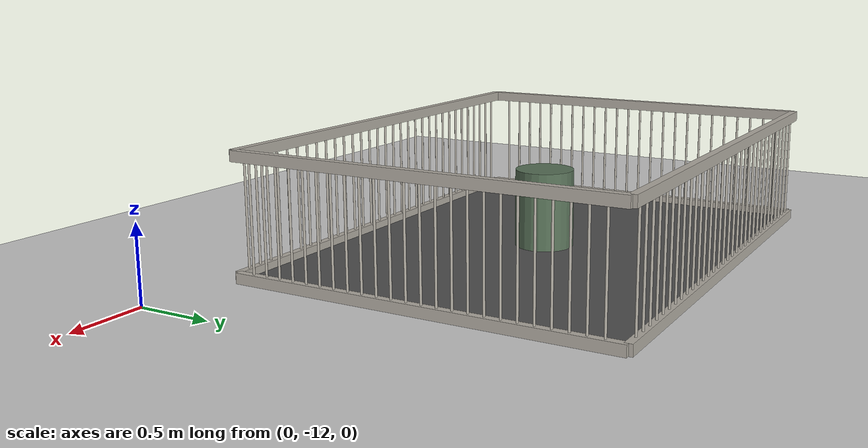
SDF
<sdf version="1.9">
 <world name="pig_pen_16units_world">
  <model name="ground_plane">
   <static>true</static>
   <link name="link">
    <collision name="collision">
     <geometry><plane><normal>0 0 1</normal><size>30 30</size></plane></geometry>
     <surface><friction><ode><mu>1.0</mu><mu2>1.0</mu2></ode></friction></surface>
    </collision>
    <visual name="visual">
     <geometry><plane><normal>0 0 1</normal><size>30 30</size></plane></geometry>
     <material>
      <ambient>0.8 0.8 0.8 1</ambient>
      <diffuse>0.8 0.8 0.8 1</diffuse>
      <specular>0.2 0.2 0.2 1</specular>
     </material>
    </visual>
   </link>
  </model>
  <model name="pen2">
   <pose>-2.275 -10.565 0 0 0 0</pose>
   <static>true</static>
   <link name="floor">
    <pose>0 0 0.01 0 0 0</pose>
    <collision name="collision"><geometry><box><size>3.30 2.55 0.02</size></box></geometry></collision>
    <visual name="visual">
     <geometry><box><size>3.30 2.55 0.02</size></box></geometry>
     <material>
      <ambient>0.25 0.25 0.25 1</ambient>
      <diffuse>0.32 0.32 0.32 1</diffuse>
      <specular>0.05 0.05 0.05 1</specular>
     </material>
    </visual>
   </link>
   <link name="left_wall">
    <pose>0 1.275 0.415 0 0 0</pose>
    <collision name="top_rail_col">
     <pose>0 0 0.38 0 0 0</pose>
     <geometry><box><size>3.30 0.05 0.07</size></box></geometry>
    </collision>
    <visual name="top_rail_vis">
     <pose>0 0 0.38 0 0 0</pose>
     <geometry><box><size>3.30 0.05 0.07</size></box></geometry>
     <material><ambient>0.70 0.68 0.64 1</ambient><diffuse>0.70 0.68 0.64 1</diffuse></material>
    </visual>
    <collision name="bottom_rail_col">
     <pose>0 0 -0.38 0 0 0</pose>
     <geometry><box><size>3.30 0.05 0.07</size></box></geometry>
    </collision>
    <visual name="bottom_rail_vis">
     <pose>0 0 -0.38 0 0 0</pose>
     <geometry><box><size>3.30 0.05 0.07</size></box></geometry>
     <material><ambient>0.70 0.68 0.64 1</ambient><diffuse>0.70 0.68 0.64 1</diffuse></material>
    </visual>
    <collision name="bar_01_col">
     <pose>-1.55 0 0 0 0 0</pose>
     <geometry><cylinder><radius>0.0075</radius><length>0.69</length></cylinder></geometry>
    </collision>
    <visual name="bar_01_vis">
     <pose>-1.55 0 0 0 0 0</pose>
     <geometry><cylinder><radius>0.0075</radius><length>0.69</length></cylinder></geometry>
     <material><ambient>0.70 0.68 0.64 1</ambient><diffuse>0.70 0.68 0.64 1</diffuse></material>
    </visual>
    <collision name="bar_02_col">
     <pose>-1.45 0 0 0 0 0</pose>
     <geometry><cylinder><radius>0.0075</radius><length>0.69</length></cylinder></geometry>
    </collision>
    <visual name="bar_02_vis">
     <pose>-1.45 0 0 0 0 0</pose>
     <geometry><cylinder><radius>0.0075</radius><length>0.69</length></cylinder></geometry>
     <material><ambient>0.70 0.68 0.64 1</ambient><diffuse>0.70 0.68 0.64 1</diffuse></material>
    </visual>
    <collision name="bar_03_col">
     <pose>-1.35 0 0 0 0 0</pose>
     <geometry><cylinder><radius>0.0075</radius><length>0.69</length></cylinder></geometry>
    </collision>
    <visual name="bar_03_vis">
     <pose>-1.35 0 0 0 0 0</pose>
     <geometry><cylinder><radius>0.0075</radius><length>0.69</length></cylinder></geometry>
     <material><ambient>0.70 0.68 0.64 1</ambient><diffuse>0.70 0.68 0.64 1</diffuse></material>
    </visual>
    <collision name="bar_04_col">
     <pose>-1.25 0 0 0 0 0</pose>
     <geometry><cylinder><radius>0.0075</radius><length>0.69</length></cylinder></geometry>
    </collision>
    <visual name="bar_04_vis">
     <pose>-1.25 0 0 0 0 0</pose>
     <geometry><cylinder><radius>0.0075</radius><length>0.69</length></cylinder></geometry>
     <material><ambient>0.70 0.68 0.64 1</ambient><diffuse>0.70 0.68 0.64 1</diffuse></material>
    </visual>
    <collision name="bar_05_col">
     <pose>-1.15 0 0 0 0 0</pose>
     <geometry><cylinder><radius>0.0075</radius><length>0.69</length></cylinder></geometry>
    </collision>
    <visual name="bar_05_vis">
     <pose>-1.15 0 0 0 0 0</pose>
     <geometry><cylinder><radius>0.0075</radius><length>0.69</length></cylinder></geometry>
     <material><ambient>0.70 0.68 0.64 1</ambient><diffuse>0.70 0.68 0.64 1</diffuse></material>
    </visual>
    <collision name="bar_06_col">
     <pose>-1.05 0 0 0 0 0</pose>
     <geometry><cylinder><radius>0.0075</radius><length>0.69</length></cylinder></geometry>
    </collision>
    <visual name="bar_06_vis">
     <pose>-1.05 0 0 0 0 0</pose>
     <geometry><cylinder><radius>0.0075</radius><length>0.69</length></cylinder></geometry>
     <material><ambient>0.70 0.68 0.64 1</ambient><diffuse>0.70 0.68 0.64 1</diffuse></material>
    </visual>
    <collision name="bar_07_col">
     <pose>-0.95 0 0 0 0 0</pose>
     <geometry><cylinder><radius>0.0075</radius><length>0.69</length></cylinder></geometry>
    </collision>
    <visual name="bar_07_vis">
     <pose>-0.95 0 0 0 0 0</pose>
     <geometry><cylinder><radius>0.0075</radius><length>0.69</length></cylinder></geometry>
     <material><ambient>0.70 0.68 0.64 1</ambient><diffuse>0.70 0.68 0.64 1</diffuse></material>
    </visual>
    <collision name="bar_08_col">
     <pose>-0.85 0 0 0 0 0</pose>
     <geometry><cylinder><radius>0.0075</radius><length>0.69</length></cylinder></geometry>
    </collision>
    <visual name="bar_08_vis">
     <pose>-0.85 0 0 0 0 0</pose>
     <geometry><cylinder><radius>0.0075</radius><length>0.69</length></cylinder></geometry>
     <material><ambient>0.70 0.68 0.64 1</ambient><diffuse>0.70 0.68 0.64 1</diffuse></material>
    </visual>
    <collision name="bar_09_col">
     <pose>-0.75 0 0 0 0 0</pose>
     <geometry><cylinder><radius>0.0075</radius><length>0.69</length></cylinder></geometry>
    </collision>
    <visual name="bar_09_vis">
     <pose>-0.75 0 0 0 0 0</pose>
     <geometry><cylinder><radius>0.0075</radius><length>0.69</length></cylinder></geometry>
     <material><ambient>0.70 0.68 0.64 1</ambient><diffuse>0.70 0.68 0.64 1</diffuse></material>
    </visual>
    <collision name="bar_10_col">
     <pose>-0.65 0 0 0 0 0</pose>
     <geometry><cylinder><radius>0.0075</radius><length>0.69</length></cylinder></geometry>
    </collision>
    <visual name="bar_10_vis">
     <pose>-0.65 0 0 0 0 0</pose>
     <geometry><cylinder><radius>0.0075</radius><length>0.69</length></cylinder></geometry>
     <material><ambient>0.70 0.68 0.64 1</ambient><diffuse>0.70 0.68 0.64 1</diffuse></material>
    </visual>
    <collision name="bar_11_col">
     <pose>-0.55 0 0 0 0 0</pose>
     <geometry><cylinder><radius>0.0075</radius><length>0.69</length></cylinder></geometry>
    </collision>
    <visual name="bar_11_vis">
     <pose>-0.55 0 0 0 0 0</pose>
     <geometry><cylinder><radius>0.0075</radius><length>0.69</length></cylinder></geometry>
     <material><ambient>0.70 0.68 0.64 1</ambient><diffuse>0.70 0.68 0.64 1</diffuse></material>
    </visual>
    <collision name="bar_12_col">
     <pose>-0.45 0 0 0 0 0</pose>
     <geometry><cylinder><radius>0.0075</radius><length>0.69</length></cylinder></geometry>
    </collision>
    <visual name="bar_12_vis">
     <pose>-0.45 0 0 0 0 0</pose>
     <geometry><cylinder><radius>0.0075</radius><length>0.69</length></cylinder></geometry>
     <material><ambient>0.70 0.68 0.64 1</ambient><diffuse>0.70 0.68 0.64 1</diffuse></material>
    </visual>
    <collision name="bar_13_col">
     <pose>-0.35 0 0 0 0 0</pose>
     <geometry><cylinder><radius>0.0075</radius><length>0.69</length></cylinder></geometry>
    </collision>
    <visual name="bar_13_vis">
     <pose>-0.35 0 0 0 0 0</pose>
     <geometry><cylinder><radius>0.0075</radius><length>0.69</length></cylinder></geometry>
     <material><ambient>0.70 0.68 0.64 1</ambient><diffuse>0.70 0.68 0.64 1</diffuse></material>
    </visual>
    <collision name="bar_14_col">
     <pose>-0.25 0 0 0 0 0</pose>
     <geometry><cylinder><radius>0.0075</radius><length>0.69</length></cylinder></geometry>
    </collision>
    <visual name="bar_14_vis">
     <pose>-0.25 0 0 0 0 0</pose>
     <geometry><cylinder><radius>0.0075</radius><length>0.69</length></cylinder></geometry>
     <material><ambient>0.70 0.68 0.64 1</ambient><diffuse>0.70 0.68 0.64 1</diffuse></material>
    </visual>
    <collision name="bar_15_col">
     <pose>-0.15 0 0 0 0 0</pose>
     <geometry><cylinder><radius>0.0075</radius><length>0.69</length></cylinder></geometry>
    </collision>
    <visual name="bar_15_vis">
     <pose>-0.15 0 0 0 0 0</pose>
     <geometry><cylinder><radius>0.0075</radius><length>0.69</length></cylinder></geometry>
     <material><ambient>0.70 0.68 0.64 1</ambient><diffuse>0.70 0.68 0.64 1</diffuse></material>
    </visual>
    <collision name="bar_16_col">
     <pose>-0.05 0 0 0 0 0</pose>
     <geometry><cylinder><radius>0.0075</radius><length>0.69</length></cylinder></geometry>
    </collision>
    <visual name="bar_16_vis">
     <pose>-0.05 0 0 0 0 0</pose>
     <geometry><cylinder><radius>0.0075</radius><length>0.69</length></cylinder></geometry>
     <material><ambient>0.70 0.68 0.64 1</ambient><diffuse>0.70 0.68 0.64 1</diffuse></material>
    </visual>
    <collision name="bar_17_col">
     <pose>0.05 0 0 0 0 0</pose>
     <geometry><cylinder><radius>0.0075</radius><length>0.69</length></cylinder></geometry>
    </collision>
    <visual name="bar_17_vis">
     <pose>0.05 0 0 0 0 0</pose>
     <geometry><cylinder><radius>0.0075</radius><length>0.69</length></cylinder></geometry>
     <material><ambient>0.70 0.68 0.64 1</ambient><diffuse>0.70 0.68 0.64 1</diffuse></material>
    </visual>
    <collision name="bar_18_col">
     <pose>0.15 0 0 0 0 0</pose>
     <geometry><cylinder><radius>0.0075</radius><length>0.69</length></cylinder></geometry>
    </collision>
    <visual name="bar_18_vis">
     <pose>0.15 0 0 0 0 0</pose>
     <geometry><cylinder><radius>0.0075</radius><length>0.69</length></cylinder></geometry>
     <material><ambient>0.70 0.68 0.64 1</ambient><diffuse>0.70 0.68 0.64 1</diffuse></material>
    </visual>
    <collision name="bar_19_col">
     <pose>0.25 0 0 0 0 0</pose>
     <geometry><cylinder><radius>0.0075</radius><length>0.69</length></cylinder></geometry>
    </collision>
    <visual name="bar_19_vis">
     <pose>0.25 0 0 0 0 0</pose>
     <geometry><cylinder><radius>0.0075</radius><length>0.69</length></cylinder></geometry>
     <material><ambient>0.70 0.68 0.64 1</ambient><diffuse>0.70 0.68 0.64 1</diffuse></material>
    </visual>
    <collision name="bar_20_col">
     <pose>0.35 0 0 0 0 0</pose>
     <geometry><cylinder><radius>0.0075</radius><length>0.69</length></cylinder></geometry>
    </collision>
    <visual name="bar_20_vis">
     <pose>0.35 0 0 0 0 0</pose>
     <geometry><cylinder><radius>0.0075</radius><length>0.69</length></cylinder></geometry>
     <material><ambient>0.70 0.68 0.64 1</ambient><diffuse>0.70 0.68 0.64 1</diffuse></material>
    </visual>
    <collision name="bar_21_col">
     <pose>0.45 0 0 0 0 0</pose>
     <geometry><cylinder><radius>0.0075</radius><length>0.69</length></cylinder></geometry>
    </collision>
    <visual name="bar_21_vis">
     <pose>0.45 0 0 0 0 0</pose>
     <geometry><cylinder><radius>0.0075</radius><length>0.69</length></cylinder></geometry>
     <material><ambient>0.70 0.68 0.64 1</ambient><diffuse>0.70 0.68 0.64 1</diffuse></material>
    </visual>
    <collision name="bar_22_col">
     <pose>0.55 0 0 0 0 0</pose>
     <geometry><cylinder><radius>0.0075</radius><length>0.69</length></cylinder></geometry>
    </collision>
    <visual name="bar_22_vis">
     <pose>0.55 0 0 0 0 0</pose>
     <geometry><cylinder><radius>0.0075</radius><length>0.69</length></cylinder></geometry>
     <material><ambient>0.70 0.68 0.64 1</ambient><diffuse>0.70 0.68 0.64 1</diffuse></material>
    </visual>
    <collision name="bar_23_col">
     <pose>0.65 0 0 0 0 0</pose>
     <geometry><cylinder><radius>0.0075</radius><length>0.69</length></cylinder></geometry>
    </collision>
    <visual name="bar_23_vis">
     <pose>0.65 0 0 0 0 0</pose>
     <geometry><cylinder><radius>0.0075</radius><length>0.69</length></cylinder></geometry>
     <material><ambient>0.70 0.68 0.64 1</ambient><diffuse>0.70 0.68 0.64 1</diffuse></material>
    </visual>
    <collision name="bar_24_col">
     <pose>0.75 0 0 0 0 0</pose>
     <geometry><cylinder><radius>0.0075</radius><length>0.69</length></cylinder></geometry>
    </collision>
    <visual name="bar_24_vis">
     <pose>0.75 0 0 0 0 0</pose>
     <geometry><cylinder><radius>0.0075</radius><length>0.69</length></cylinder></geometry>
     <material><ambient>0.70 0.68 0.64 1</ambient><diffuse>0.70 0.68 0.64 1</diffuse></material>
    </visual>
    <collision name="bar_25_col">
     <pose>0.85 0 0 0 0 0</pose>
     <geometry><cylinder><radius>0.0075</radius><length>0.69</length></cylinder></geometry>
    </collision>
    <visual name="bar_25_vis">
     <pose>0.85 0 0 0 0 0</pose>
     <geometry><cylinder><radius>0.0075</radius><length>0.69</length></cylinder></geometry>
     <material><ambient>0.70 0.68 0.64 1</ambient><diffuse>0.70 0.68 0.64 1</diffuse></material>
    </visual>
    <collision name="bar_26_col">
     <pose>0.95 0 0 0 0 0</pose>
     <geometry><cylinder><radius>0.0075</radius><length>0.69</length></cylinder></geometry>
    </collision>
    <visual name="bar_26_vis">
     <pose>0.95 0 0 0 0 0</pose>
     <geometry><cylinder><radius>0.0075</radius><length>0.69</length></cylinder></geometry>
     <material><ambient>0.70 0.68 0.64 1</ambient><diffuse>0.70 0.68 0.64 1</diffuse></material>
    </visual>
    <collision name="bar_27_col">
     <pose>1.05 0 0 0 0 0</pose>
     <geometry><cylinder><radius>0.0075</radius><length>0.69</length></cylinder></geometry>
    </collision>
    <visual name="bar_27_vis">
     <pose>1.05 0 0 0 0 0</pose>
     <geometry><cylinder><radius>0.0075</radius><length>0.69</length></cylinder></geometry>
     <material><ambient>0.70 0.68 0.64 1</ambient><diffuse>0.70 0.68 0.64 1</diffuse></material>
    </visual>
    <collision name="bar_28_col">
     <pose>1.15 0 0 0 0 0</pose>
     <geometry><cylinder><radius>0.0075</radius><length>0.69</length></cylinder></geometry>
    </collision>
    <visual name="bar_28_vis">
     <pose>1.15 0 0 0 0 0</pose>
     <geometry><cylinder><radius>0.0075</radius><length>0.69</length></cylinder></geometry>
     <material><ambient>0.70 0.68 0.64 1</ambient><diffuse>0.70 0.68 0.64 1</diffuse></material>
    </visual>
    <collision name="bar_29_col">
     <pose>1.25 0 0 0 0 0</pose>
     <geometry><cylinder><radius>0.0075</radius><length>0.69</length></cylinder></geometry>
    </collision>
    <visual name="bar_29_vis">
     <pose>1.25 0 0 0 0 0</pose>
     <geometry><cylinder><radius>0.0075</radius><length>0.69</length></cylinder></geometry>
     <material><ambient>0.70 0.68 0.64 1</ambient><diffuse>0.70 0.68 0.64 1</diffuse></material>
    </visual>
    <collision name="bar_30_col">
     <pose>1.35 0 0 0 0 0</pose>
     <geometry><cylinder><radius>0.0075</radius><length>0.69</length></cylinder></geometry>
    </collision>
    <visual name="bar_30_vis">
     <pose>1.35 0 0 0 0 0</pose>
     <geometry><cylinder><radius>0.0075</radius><length>0.69</length></cylinder></geometry>
     <material><ambient>0.70 0.68 0.64 1</ambient><diffuse>0.70 0.68 0.64 1</diffuse></material>
    </visual>
    <collision name="bar_31_col">
     <pose>1.45 0 0 0 0 0</pose>
     <geometry><cylinder><radius>0.0075</radius><length>0.69</length></cylinder></geometry>
    </collision>
    <visual name="bar_31_vis">
     <pose>1.45 0 0 0 0 0</pose>
     <geometry><cylinder><radius>0.0075</radius><length>0.69</length></cylinder></geometry>
     <material><ambient>0.70 0.68 0.64 1</ambient><diffuse>0.70 0.68 0.64 1</diffuse></material>
    </visual>
    <collision name="bar_32_col">
     <pose>1.55 0 0 0 0 0</pose>
     <geometry><cylinder><radius>0.0075</radius><length>0.69</length></cylinder></geometry>
    </collision>
    <visual name="bar_32_vis">
     <pose>1.55 0 0 0 0 0</pose>
     <geometry><cylinder><radius>0.0075</radius><length>0.69</length></cylinder></geometry>
     <material><ambient>0.70 0.68 0.64 1</ambient><diffuse>0.70 0.68 0.64 1</diffuse></material>
    </visual>
   </link>
   <link name="right_wall">
    <pose>0 -1.275 0.415 0 0 0</pose>
    <collision name="top_rail_col">
     <pose>0 0 0.38 0 0 0</pose>
     <geometry><box><size>3.30 0.05 0.07</size></box></geometry>
    </collision>
    <visual name="top_rail_vis">
     <pose>0 0 0.38 0 0 0</pose>
     <geometry><box><size>3.30 0.05 0.07</size></box></geometry>
     <material><ambient>0.70 0.68 0.64 1</ambient><diffuse>0.70 0.68 0.64 1</diffuse></material>
    </visual>
    <collision name="bottom_rail_col">
     <pose>0 0 -0.38 0 0 0</pose>
     <geometry><box><size>3.30 0.05 0.07</size></box></geometry>
    </collision>
    <visual name="bottom_rail_vis">
     <pose>0 0 -0.38 0 0 0</pose>
     <geometry><box><size>3.30 0.05 0.07</size></box></geometry>
     <material><ambient>0.70 0.68 0.64 1</ambient><diffuse>0.70 0.68 0.64 1</diffuse></material>
    </visual>
    <collision name="bar_01_col">
     <pose>-1.55 0 0 0 0 0</pose>
     <geometry><cylinder><radius>0.0075</radius><length>0.69</length></cylinder></geometry>
    </collision>
    <visual name="bar_01_vis">
     <pose>-1.55 0 0 0 0 0</pose>
     <geometry><cylinder><radius>0.0075</radius><length>0.69</length></cylinder></geometry>
     <material><ambient>0.70 0.68 0.64 1</ambient><diffuse>0.70 0.68 0.64 1</diffuse></material>
    </visual>
    <collision name="bar_02_col">
     <pose>-1.45 0 0 0 0 0</pose>
     <geometry><cylinder><radius>0.0075</radius><length>0.69</length></cylinder></geometry>
    </collision>
    <visual name="bar_02_vis">
     <pose>-1.45 0 0 0 0 0</pose>
     <geometry><cylinder><radius>0.0075</radius><length>0.69</length></cylinder></geometry>
     <material><ambient>0.70 0.68 0.64 1</ambient><diffuse>0.70 0.68 0.64 1</diffuse></material>
    </visual>
    <collision name="bar_03_col">
     <pose>-1.35 0 0 0 0 0</pose>
     <geometry><cylinder><radius>0.0075</radius><length>0.69</length></cylinder></geometry>
    </collision>
    <visual name="bar_03_vis">
     <pose>-1.35 0 0 0 0 0</pose>
     <geometry><cylinder><radius>0.0075</radius><length>0.69</length></cylinder></geometry>
     <material><ambient>0.70 0.68 0.64 1</ambient><diffuse>0.70 0.68 0.64 1</diffuse></material>
    </visual>
    <collision name="bar_04_col">
     <pose>-1.25 0 0 0 0 0</pose>
     <geometry><cylinder><radius>0.0075</radius><length>0.69</length></cylinder></geometry>
    </collision>
    <visual name="bar_04_vis">
     <pose>-1.25 0 0 0 0 0</pose>
     <geometry><cylinder><radius>0.0075</radius><length>0.69</length></cylinder></geometry>
     <material><ambient>0.70 0.68 0.64 1</ambient><diffuse>0.70 0.68 0.64 1</diffuse></material>
    </visual>
    <collision name="bar_05_col">
     <pose>-1.15 0 0 0 0 0</pose>
     <geometry><cylinder><radius>0.0075</radius><length>0.69</length></cylinder></geometry>
    </collision>
    <visual name="bar_05_vis">
     <pose>-1.15 0 0 0 0 0</pose>
     <geometry><cylinder><radius>0.0075</radius><length>0.69</length></cylinder></geometry>
     <material><ambient>0.70 0.68 0.64 1</ambient><diffuse>0.70 0.68 0.64 1</diffuse></material>
    </visual>
    <collision name="bar_06_col">
     <pose>-1.05 0 0 0 0 0</pose>
     <geometry><cylinder><radius>0.0075</radius><length>0.69</length></cylinder></geometry>
    </collision>
    <visual name="bar_06_vis">
     <pose>-1.05 0 0 0 0 0</pose>
     <geometry><cylinder><radius>0.0075</radius><length>0.69</length></cylinder></geometry>
     <material><ambient>0.70 0.68 0.64 1</ambient><diffuse>0.70 0.68 0.64 1</diffuse></material>
    </visual>
    <collision name="bar_07_col">
     <pose>-0.95 0 0 0 0 0</pose>
     <geometry><cylinder><radius>0.0075</radius><length>0.69</length></cylinder></geometry>
    </collision>
    <visual name="bar_07_vis">
     <pose>-0.95 0 0 0 0 0</pose>
     <geometry><cylinder><radius>0.0075</radius><length>0.69</length></cylinder></geometry>
     <material><ambient>0.70 0.68 0.64 1</ambient><diffuse>0.70 0.68 0.64 1</diffuse></material>
    </visual>
    <collision name="bar_08_col">
     <pose>-0.85 0 0 0 0 0</pose>
     <geometry><cylinder><radius>0.0075</radius><length>0.69</length></cylinder></geometry>
    </collision>
    <visual name="bar_08_vis">
     <pose>-0.85 0 0 0 0 0</pose>
     <geometry><cylinder><radius>0.0075</radius><length>0.69</length></cylinder></geometry>
     <material><ambient>0.70 0.68 0.64 1</ambient><diffuse>0.70 0.68 0.64 1</diffuse></material>
    </visual>
    <collision name="bar_09_col">
     <pose>-0.75 0 0 0 0 0</pose>
     <geometry><cylinder><radius>0.0075</radius><length>0.69</length></cylinder></geometry>
    </collision>
    <visual name="bar_09_vis">
     <pose>-0.75 0 0 0 0 0</pose>
     <geometry><cylinder><radius>0.0075</radius><length>0.69</length></cylinder></geometry>
     <material><ambient>0.70 0.68 0.64 1</ambient><diffuse>0.70 0.68 0.64 1</diffuse></material>
    </visual>
    <collision name="bar_10_col">
     <pose>-0.65 0 0 0 0 0</pose>
     <geometry><cylinder><radius>0.0075</radius><length>0.69</length></cylinder></geometry>
    </collision>
    <visual name="bar_10_vis">
     <pose>-0.65 0 0 0 0 0</pose>
     <geometry><cylinder><radius>0.0075</radius><length>0.69</length></cylinder></geometry>
     <material><ambient>0.70 0.68 0.64 1</ambient><diffuse>0.70 0.68 0.64 1</diffuse></material>
    </visual>
    <collision name="bar_11_col">
     <pose>-0.55 0 0 0 0 0</pose>
     <geometry><cylinder><radius>0.0075</radius><length>0.69</length></cylinder></geometry>
    </collision>
    <visual name="bar_11_vis">
     <pose>-0.55 0 0 0 0 0</pose>
     <geometry><cylinder><radius>0.0075</radius><length>0.69</length></cylinder></geometry>
     <material><ambient>0.70 0.68 0.64 1</ambient><diffuse>0.70 0.68 0.64 1</diffuse></material>
    </visual>
    <collision name="bar_12_col">
     <pose>-0.45 0 0 0 0 0</pose>
     <geometry><cylinder><radius>0.0075</radius><length>0.69</length></cylinder></geometry>
    </collision>
    <visual name="bar_12_vis">
     <pose>-0.45 0 0 0 0 0</pose>
     <geometry><cylinder><radius>0.0075</radius><length>0.69</length></cylinder></geometry>
     <material><ambient>0.70 0.68 0.64 1</ambient><diffuse>0.70 0.68 0.64 1</diffuse></material>
    </visual>
    <collision name="bar_13_col">
     <pose>-0.35 0 0 0 0 0</pose>
     <geometry><cylinder><radius>0.0075</radius><length>0.69</length></cylinder></geometry>
    </collision>
    <visual name="bar_13_vis">
     <pose>-0.35 0 0 0 0 0</pose>
     <geometry><cylinder><radius>0.0075</radius><length>0.69</length></cylinder></geometry>
     <material><ambient>0.70 0.68 0.64 1</ambient><diffuse>0.70 0.68 0.64 1</diffuse></material>
    </visual>
    <collision name="bar_14_col">
     <pose>-0.25 0 0 0 0 0</pose>
     <geometry><cylinder><radius>0.0075</radius><length>0.69</length></cylinder></geometry>
    </collision>
    <visual name="bar_14_vis">
     <pose>-0.25 0 0 0 0 0</pose>
     <geometry><cylinder><radius>0.0075</radius><length>0.69</length></cylinder></geometry>
     <material><ambient>0.70 0.68 0.64 1</ambient><diffuse>0.70 0.68 0.64 1</diffuse></material>
    </visual>
    <collision name="bar_15_col">
     <pose>-0.15 0 0 0 0 0</pose>
     <geometry><cylinder><radius>0.0075</radius><length>0.69</length></cylinder></geometry>
    </collision>
    <visual name="bar_15_vis">
     <pose>-0.15 0 0 0 0 0</pose>
     <geometry><cylinder><radius>0.0075</radius><length>0.69</length></cylinder></geometry>
     <material><ambient>0.70 0.68 0.64 1</ambient><diffuse>0.70 0.68 0.64 1</diffuse></material>
    </visual>
    <collision name="bar_16_col">
     <pose>-0.05 0 0 0 0 0</pose>
     <geometry><cylinder><radius>0.0075</radius><length>0.69</length></cylinder></geometry>
    </collision>
    <visual name="bar_16_vis">
     <pose>-0.05 0 0 0 0 0</pose>
     <geometry><cylinder><radius>0.0075</radius><length>0.69</length></cylinder></geometry>
     <material><ambient>0.70 0.68 0.64 1</ambient><diffuse>0.70 0.68 0.64 1</diffuse></material>
    </visual>
    <collision name="bar_17_col">
     <pose>0.05 0 0 0 0 0</pose>
     <geometry><cylinder><radius>0.0075</radius><length>0.69</length></cylinder></geometry>
    </collision>
    <visual name="bar_17_vis">
     <pose>0.05 0 0 0 0 0</pose>
     <geometry><cylinder><radius>0.0075</radius><length>0.69</length></cylinder></geometry>
     <material><ambient>0.70 0.68 0.64 1</ambient><diffuse>0.70 0.68 0.64 1</diffuse></material>
    </visual>
    <collision name="bar_18_col">
     <pose>0.15 0 0 0 0 0</pose>
     <geometry><cylinder><radius>0.0075</radius><length>0.69</length></cylinder></geometry>
    </collision>
    <visual name="bar_18_vis">
     <pose>0.15 0 0 0 0 0</pose>
     <geometry><cylinder><radius>0.0075</radius><length>0.69</length></cylinder></geometry>
     <material><ambient>0.70 0.68 0.64 1</ambient><diffuse>0.70 0.68 0.64 1</diffuse></material>
    </visual>
    <collision name="bar_19_col">
     <pose>0.25 0 0 0 0 0</pose>
     <geometry><cylinder><radius>0.0075</radius><length>0.69</length></cylinder></geometry>
    </collision>
    <visual name="bar_19_vis">
     <pose>0.25 0 0 0 0 0</pose>
     <geometry><cylinder><radius>0.0075</radius><length>0.69</length></cylinder></geometry>
     <material><ambient>0.70 0.68 0.64 1</ambient><diffuse>0.70 0.68 0.64 1</diffuse></material>
    </visual>
    <collision name="bar_20_col">
     <pose>0.35 0 0 0 0 0</pose>
     <geometry><cylinder><radius>0.0075</radius><length>0.69</length></cylinder></geometry>
    </collision>
    <visual name="bar_20_vis">
     <pose>0.35 0 0 0 0 0</pose>
     <geometry><cylinder><radius>0.0075</radius><length>0.69</length></cylinder></geometry>
     <material><ambient>0.70 0.68 0.64 1</ambient><diffuse>0.70 0.68 0.64 1</diffuse></material>
    </visual>
    <collision name="bar_21_col">
     <pose>0.45 0 0 0 0 0</pose>
     <geometry><cylinder><radius>0.0075</radius><length>0.69</length></cylinder></geometry>
    </collision>
    <visual name="bar_21_vis">
     <pose>0.45 0 0 0 0 0</pose>
     <geometry><cylinder><radius>0.0075</radius><length>0.69</length></cylinder></geometry>
     <material><ambient>0.70 0.68 0.64 1</ambient><diffuse>0.70 0.68 0.64 1</diffuse></material>
    </visual>
    <collision name="bar_22_col">
     <pose>0.55 0 0 0 0 0</pose>
     <geometry><cylinder><radius>0.0075</radius><length>0.69</length></cylinder></geometry>
    </collision>
    <visual name="bar_22_vis">
     <pose>0.55 0 0 0 0 0</pose>
     <geometry><cylinder><radius>0.0075</radius><length>0.69</length></cylinder></geometry>
     <material><ambient>0.70 0.68 0.64 1</ambient><diffuse>0.70 0.68 0.64 1</diffuse></material>
    </visual>
    <collision name="bar_23_col">
     <pose>0.65 0 0 0 0 0</pose>
     <geometry><cylinder><radius>0.0075</radius><length>0.69</length></cylinder></geometry>
    </collision>
    <visual name="bar_23_vis">
     <pose>0.65 0 0 0 0 0</pose>
     <geometry><cylinder><radius>0.0075</radius><length>0.69</length></cylinder></geometry>
     <material><ambient>0.70 0.68 0.64 1</ambient><diffuse>0.70 0.68 0.64 1</diffuse></material>
    </visual>
    <collision name="bar_24_col">
     <pose>0.75 0 0 0 0 0</pose>
     <geometry><cylinder><radius>0.0075</radius><length>0.69</length></cylinder></geometry>
    </collision>
    <visual name="bar_24_vis">
     <pose>0.75 0 0 0 0 0</pose>
     <geometry><cylinder><radius>0.0075</radius><length>0.69</length></cylinder></geometry>
     <material><ambient>0.70 0.68 0.64 1</ambient><diffuse>0.70 0.68 0.64 1</diffuse></material>
    </visual>
    <collision name="bar_25_col">
     <pose>0.85 0 0 0 0 0</pose>
     <geometry><cylinder><radius>0.0075</radius><length>0.69</length></cylinder></geometry>
    </collision>
    <visual name="bar_25_vis">
     <pose>0.85 0 0 0 0 0</pose>
     <geometry><cylinder><radius>0.0075</radius><length>0.69</length></cylinder></geometry>
     <material><ambient>0.70 0.68 0.64 1</ambient><diffuse>0.70 0.68 0.64 1</diffuse></material>
    </visual>
    <collision name="bar_26_col">
     <pose>0.95 0 0 0 0 0</pose>
     <geometry><cylinder><radius>0.0075</radius><length>0.69</length></cylinder></geometry>
    </collision>
    <visual name="bar_26_vis">
     <pose>0.95 0 0 0 0 0</pose>
     <geometry><cylinder><radius>0.0075</radius><length>0.69</length></cylinder></geometry>
     <material><ambient>0.70 0.68 0.64 1</ambient><diffuse>0.70 0.68 0.64 1</diffuse></material>
    </visual>
    <collision name="bar_27_col">
     <pose>1.05 0 0 0 0 0</pose>
     <geometry><cylinder><radius>0.0075</radius><length>0.69</length></cylinder></geometry>
    </collision>
    <visual name="bar_27_vis">
     <pose>1.05 0 0 0 0 0</pose>
     <geometry><cylinder><radius>0.0075</radius><length>0.69</length></cylinder></geometry>
     <material><ambient>0.70 0.68 0.64 1</ambient><diffuse>0.70 0.68 0.64 1</diffuse></material>
    </visual>
    <collision name="bar_28_col">
     <pose>1.15 0 0 0 0 0</pose>
     <geometry><cylinder><radius>0.0075</radius><length>0.69</length></cylinder></geometry>
    </collision>
    <visual name="bar_28_vis">
     <pose>1.15 0 0 0 0 0</pose>
     <geometry><cylinder><radius>0.0075</radius><length>0.69</length></cylinder></geometry>
     <material><ambient>0.70 0.68 0.64 1</ambient><diffuse>0.70 0.68 0.64 1</diffuse></material>
    </visual>
    <collision name="bar_29_col">
     <pose>1.25 0 0 0 0 0</pose>
     <geometry><cylinder><radius>0.0075</radius><length>0.69</length></cylinder></geometry>
    </collision>
    <visual name="bar_29_vis">
     <pose>1.25 0 0 0 0 0</pose>
     <geometry><cylinder><radius>0.0075</radius><length>0.69</length></cylinder></geometry>
     <material><ambient>0.70 0.68 0.64 1</ambient><diffuse>0.70 0.68 0.64 1</diffuse></material>
    </visual>
    <collision name="bar_30_col">
     <pose>1.35 0 0 0 0 0</pose>
     <geometry><cylinder><radius>0.0075</radius><length>0.69</length></cylinder></geometry>
    </collision>
    <visual name="bar_30_vis">
     <pose>1.35 0 0 0 0 0</pose>
     <geometry><cylinder><radius>0.0075</radius><length>0.69</length></cylinder></geometry>
     <material><ambient>0.70 0.68 0.64 1</ambient><diffuse>0.70 0.68 0.64 1</diffuse></material>
    </visual>
    <collision name="bar_31_col">
     <pose>1.45 0 0 0 0 0</pose>
     <geometry><cylinder><radius>0.0075</radius><length>0.69</length></cylinder></geometry>
    </collision>
    <visual name="bar_31_vis">
     <pose>1.45 0 0 0 0 0</pose>
     <geometry><cylinder><radius>0.0075</radius><length>0.69</length></cylinder></geometry>
     <material><ambient>0.70 0.68 0.64 1</ambient><diffuse>0.70 0.68 0.64 1</diffuse></material>
    </visual>
    <collision name="bar_32_col">
     <pose>1.55 0 0 0 0 0</pose>
     <geometry><cylinder><radius>0.0075</radius><length>0.69</length></cylinder></geometry>
    </collision>
    <visual name="bar_32_vis">
     <pose>1.55 0 0 0 0 0</pose>
     <geometry><cylinder><radius>0.0075</radius><length>0.69</length></cylinder></geometry>
     <material><ambient>0.70 0.68 0.64 1</ambient><diffuse>0.70 0.68 0.64 1</diffuse></material>
    </visual>
   </link>
   <link name="back_wall">
    <pose>1.65 0 0.415 0 0 0</pose>
    <collision name="top_rail_col">
     <pose>0 0 0.38 0 0 0</pose>
     <geometry><box><size>0.05 2.55 0.07</size></box></geometry>
    </collision>
    <visual name="top_rail_vis">
     <pose>0 0 0.38 0 0 0</pose>
     <geometry><box><size>0.05 2.55 0.07</size></box></geometry>
     <material><ambient>0.70 0.68 0.64 1</ambient><diffuse>0.70 0.68 0.64 1</diffuse></material>
    </visual>
    <collision name="bottom_rail_col">
     <pose>0 0 -0.38 0 0 0</pose>
     <geometry><box><size>0.05 2.55 0.07</size></box></geometry>
    </collision>
    <visual name="bottom_rail_vis">
     <pose>0 0 -0.38 0 0 0</pose>
     <geometry><box><size>0.05 2.55 0.07</size></box></geometry>
     <material><ambient>0.70 0.68 0.64 1</ambient><diffuse>0.70 0.68 0.64 1</diffuse></material>
    </visual>
    <collision name="bar_01_col">
     <pose>0 -1.15 0 0 0 0</pose>
     <geometry><cylinder><radius>0.0075</radius><length>0.69</length></cylinder></geometry>
    </collision>
    <visual name="bar_01_vis">
     <pose>0 -1.15 0 0 0 0</pose>
     <geometry><cylinder><radius>0.0075</radius><length>0.69</length></cylinder></geometry>
     <material><ambient>0.70 0.68 0.64 1</ambient><diffuse>0.70 0.68 0.64 1</diffuse></material>
    </visual>
    <collision name="bar_02_col">
     <pose>0 -1.05 0 0 0 0</pose>
     <geometry><cylinder><radius>0.0075</radius><length>0.69</length></cylinder></geometry>
    </collision>
    <visual name="bar_02_vis">
     <pose>0 -1.05 0 0 0 0</pose>
     <geometry><cylinder><radius>0.0075</radius><length>0.69</length></cylinder></geometry>
     <material><ambient>0.70 0.68 0.64 1</ambient><diffuse>0.70 0.68 0.64 1</diffuse></material>
    </visual>
    <collision name="bar_03_col">
     <pose>0 -0.95 0 0 0 0</pose>
     <geometry><cylinder><radius>0.0075</radius><length>0.69</length></cylinder></geometry>
    </collision>
    <visual name="bar_03_vis">
     <pose>0 -0.95 0 0 0 0</pose>
     <geometry><cylinder><radius>0.0075</radius><length>0.69</length></cylinder></geometry>
     <material><ambient>0.70 0.68 0.64 1</ambient><diffuse>0.70 0.68 0.64 1</diffuse></material>
    </visual>
    <collision name="bar_04_col">
     <pose>0 -0.85 0 0 0 0</pose>
     <geometry><cylinder><radius>0.0075</radius><length>0.69</length></cylinder></geometry>
    </collision>
    <visual name="bar_04_vis">
     <pose>0 -0.85 0 0 0 0</pose>
     <geometry><cylinder><radius>0.0075</radius><length>0.69</length></cylinder></geometry>
     <material><ambient>0.70 0.68 0.64 1</ambient><diffuse>0.70 0.68 0.64 1</diffuse></material>
    </visual>
    <collision name="bar_05_col">
     <pose>0 -0.75 0 0 0 0</pose>
     <geometry><cylinder><radius>0.0075</radius><length>0.69</length></cylinder></geometry>
    </collision>
    <visual name="bar_05_vis">
     <pose>0 -0.75 0 0 0 0</pose>
     <geometry><cylinder><radius>0.0075</radius><length>0.69</length></cylinder></geometry>
     <material><ambient>0.70 0.68 0.64 1</ambient><diffuse>0.70 0.68 0.64 1</diffuse></material>
    </visual>
    <collision name="bar_06_col">
     <pose>0 -0.65 0 0 0 0</pose>
     <geometry><cylinder><radius>0.0075</radius><length>0.69</length></cylinder></geometry>
    </collision>
    <visual name="bar_06_vis">
     <pose>0 -0.65 0 0 0 0</pose>
     <geometry><cylinder><radius>0.0075</radius><length>0.69</length></cylinder></geometry>
     <material><ambient>0.70 0.68 0.64 1</ambient><diffuse>0.70 0.68 0.64 1</diffuse></material>
    </visual>
    <collision name="bar_07_col">
     <pose>0 -0.55 0 0 0 0</pose>
     <geometry><cylinder><radius>0.0075</radius><length>0.69</length></cylinder></geometry>
    </collision>
    <visual name="bar_07_vis">
     <pose>0 -0.55 0 0 0 0</pose>
     <geometry><cylinder><radius>0.0075</radius><length>0.69</length></cylinder></geometry>
     <material><ambient>0.70 0.68 0.64 1</ambient><diffuse>0.70 0.68 0.64 1</diffuse></material>
    </visual>
    <collision name="bar_08_col">
     <pose>0 -0.45 0 0 0 0</pose>
     <geometry><cylinder><radius>0.0075</radius><length>0.69</length></cylinder></geometry>
    </collision>
    <visual name="bar_08_vis">
     <pose>0 -0.45 0 0 0 0</pose>
     <geometry><cylinder><radius>0.0075</radius><length>0.69</length></cylinder></geometry>
     <material><ambient>0.70 0.68 0.64 1</ambient><diffuse>0.70 0.68 0.64 1</diffuse></material>
    </visual>
    <collision name="bar_09_col">
     <pose>0 -0.35 0 0 0 0</pose>
     <geometry><cylinder><radius>0.0075</radius><length>0.69</length></cylinder></geometry>
    </collision>
    <visual name="bar_09_vis">
     <pose>0 -0.35 0 0 0 0</pose>
     <geometry><cylinder><radius>0.0075</radius><length>0.69</length></cylinder></geometry>
     <material><ambient>0.70 0.68 0.64 1</ambient><diffuse>0.70 0.68 0.64 1</diffuse></material>
    </visual>
    <collision name="bar_10_col">
     <pose>0 -0.25 0 0 0 0</pose>
     <geometry><cylinder><radius>0.0075</radius><length>0.69</length></cylinder></geometry>
    </collision>
    <visual name="bar_10_vis">
     <pose>0 -0.25 0 0 0 0</pose>
     <geometry><cylinder><radius>0.0075</radius><length>0.69</length></cylinder></geometry>
     <material><ambient>0.70 0.68 0.64 1</ambient><diffuse>0.70 0.68 0.64 1</diffuse></material>
    </visual>
    <collision name="bar_11_col">
     <pose>0 -0.15 0 0 0 0</pose>
     <geometry><cylinder><radius>0.0075</radius><length>0.69</length></cylinder></geometry>
    </collision>
    <visual name="bar_11_vis">
     <pose>0 -0.15 0 0 0 0</pose>
     <geometry><cylinder><radius>0.0075</radius><length>0.69</length></cylinder></geometry>
     <material><ambient>0.70 0.68 0.64 1</ambient><diffuse>0.70 0.68 0.64 1</diffuse></material>
    </visual>
    <collision name="bar_12_col">
     <pose>0 -0.05 0 0 0 0</pose>
     <geometry><cylinder><radius>0.0075</radius><length>0.69</length></cylinder></geometry>
    </collision>
    <visual name="bar_12_vis">
     <pose>0 -0.05 0 0 0 0</pose>
     <geometry><cylinder><radius>0.0075</radius><length>0.69</length></cylinder></geometry>
     <material><ambient>0.70 0.68 0.64 1</ambient><diffuse>0.70 0.68 0.64 1</diffuse></material>
    </visual>
    <collision name="bar_13_col">
     <pose>0 0.05 0 0 0 0</pose>
     <geometry><cylinder><radius>0.0075</radius><length>0.69</length></cylinder></geometry>
    </collision>
    <visual name="bar_13_vis">
     <pose>0 0.05 0 0 0 0</pose>
     <geometry><cylinder><radius>0.0075</radius><length>0.69</length></cylinder></geometry>
     <material><ambient>0.70 0.68 0.64 1</ambient><diffuse>0.70 0.68 0.64 1</diffuse></material>
    </visual>
    <collision name="bar_14_col">
     <pose>0 0.15 0 0 0 0</pose>
     <geometry><cylinder><radius>0.0075</radius><length>0.69</length></cylinder></geometry>
    </collision>
    <visual name="bar_14_vis">
     <pose>0 0.15 0 0 0 0</pose>
     <geometry><cylinder><radius>0.0075</radius><length>0.69</length></cylinder></geometry>
     <material><ambient>0.70 0.68 0.64 1</ambient><diffuse>0.70 0.68 0.64 1</diffuse></material>
    </visual>
    <collision name="bar_15_col">
     <pose>0 0.25 0 0 0 0</pose>
     <geometry><cylinder><radius>0.0075</radius><length>0.69</length></cylinder></geometry>
    </collision>
    <visual name="bar_15_vis">
     <pose>0 0.25 0 0 0 0</pose>
     <geometry><cylinder><radius>0.0075</radius><length>0.69</length></cylinder></geometry>
     <material><ambient>0.70 0.68 0.64 1</ambient><diffuse>0.70 0.68 0.64 1</diffuse></material>
    </visual>
    <collision name="bar_16_col">
     <pose>0 0.35 0 0 0 0</pose>
     <geometry><cylinder><radius>0.0075</radius><length>0.69</length></cylinder></geometry>
    </collision>
    <visual name="bar_16_vis">
     <pose>0 0.35 0 0 0 0</pose>
     <geometry><cylinder><radius>0.0075</radius><length>0.69</length></cylinder></geometry>
     <material><ambient>0.70 0.68 0.64 1</ambient><diffuse>0.70 0.68 0.64 1</diffuse></material>
    </visual>
    <collision name="bar_17_col">
     <pose>0 0.45 0 0 0 0</pose>
     <geometry><cylinder><radius>0.0075</radius><length>0.69</length></cylinder></geometry>
    </collision>
    <visual name="bar_17_vis">
     <pose>0 0.45 0 0 0 0</pose>
     <geometry><cylinder><radius>0.0075</radius><length>0.69</length></cylinder></geometry>
     <material><ambient>0.70 0.68 0.64 1</ambient><diffuse>0.70 0.68 0.64 1</diffuse></material>
    </visual>
    <collision name="bar_18_col">
     <pose>0 0.55 0 0 0 0</pose>
     <geometry><cylinder><radius>0.0075</radius><length>0.69</length></cylinder></geometry>
    </collision>
    <visual name="bar_18_vis">
     <pose>0 0.55 0 0 0 0</pose>
     <geometry><cylinder><radius>0.0075</radius><length>0.69</length></cylinder></geometry>
     <material><ambient>0.70 0.68 0.64 1</ambient><diffuse>0.70 0.68 0.64 1</diffuse></material>
    </visual>
    <collision name="bar_19_col">
     <pose>0 0.65 0 0 0 0</pose>
     <geometry><cylinder><radius>0.0075</radius><length>0.69</length></cylinder></geometry>
    </collision>
    <visual name="bar_19_vis">
     <pose>0 0.65 0 0 0 0</pose>
     <geometry><cylinder><radius>0.0075</radius><length>0.69</length></cylinder></geometry>
     <material><ambient>0.70 0.68 0.64 1</ambient><diffuse>0.70 0.68 0.64 1</diffuse></material>
    </visual>
    <collision name="bar_20_col">
     <pose>0 0.75 0 0 0 0</pose>
     <geometry><cylinder><radius>0.0075</radius><length>0.69</length></cylinder></geometry>
    </collision>
    <visual name="bar_20_vis">
     <pose>0 0.75 0 0 0 0</pose>
     <geometry><cylinder><radius>0.0075</radius><length>0.69</length></cylinder></geometry>
     <material><ambient>0.70 0.68 0.64 1</ambient><diffuse>0.70 0.68 0.64 1</diffuse></material>
    </visual>
    <collision name="bar_21_col">
     <pose>0 0.85 0 0 0 0</pose>
     <geometry><cylinder><radius>0.0075</radius><length>0.69</length></cylinder></geometry>
    </collision>
    <visual name="bar_21_vis">
     <pose>0 0.85 0 0 0 0</pose>
     <geometry><cylinder><radius>0.0075</radius><length>0.69</length></cylinder></geometry>
     <material><ambient>0.70 0.68 0.64 1</ambient><diffuse>0.70 0.68 0.64 1</diffuse></material>
    </visual>
    <collision name="bar_22_col">
     <pose>0 0.95 0 0 0 0</pose>
     <geometry><cylinder><radius>0.0075</radius><length>0.69</length></cylinder></geometry>
    </collision>
    <visual name="bar_22_vis">
     <pose>0 0.95 0 0 0 0</pose>
     <geometry><cylinder><radius>0.0075</radius><length>0.69</length></cylinder></geometry>
     <material><ambient>0.70 0.68 0.64 1</ambient><diffuse>0.70 0.68 0.64 1</diffuse></material>
    </visual>
    <collision name="bar_23_col">
     <pose>0 1.05 0 0 0 0</pose>
     <geometry><cylinder><radius>0.0075</radius><length>0.69</length></cylinder></geometry>
    </collision>
    <visual name="bar_23_vis">
     <pose>0 1.05 0 0 0 0</pose>
     <geometry><cylinder><radius>0.0075</radius><length>0.69</length></cylinder></geometry>
     <material><ambient>0.70 0.68 0.64 1</ambient><diffuse>0.70 0.68 0.64 1</diffuse></material>
    </visual>
    <collision name="bar_24_col">
     <pose>0 1.15 0 0 0 0</pose>
     <geometry><cylinder><radius>0.0075</radius><length>0.69</length></cylinder></geometry>
    </collision>
    <visual name="bar_24_vis">
     <pose>0 1.15 0 0 0 0</pose>
     <geometry><cylinder><radius>0.0075</radius><length>0.69</length></cylinder></geometry>
     <material><ambient>0.70 0.68 0.64 1</ambient><diffuse>0.70 0.68 0.64 1</diffuse></material>
    </visual>
   </link>
   <link name="front_wall">
    <pose>-1.65 0 0.415 0 0 0</pose>
    <collision name="top_rail_col">
     <pose>0 0 0.38 0 0 0</pose>
     <geometry><box><size>0.05 2.55 0.07</size></box></geometry>
    </collision>
    <visual name="top_rail_vis">
     <pose>0 0 0.38 0 0 0</pose>
     <geometry><box><size>0.05 2.55 0.07</size></box></geometry>
     <material><ambient>0.70 0.68 0.64 1</ambient><diffuse>0.70 0.68 0.64 1</diffuse></material>
    </visual>
    <collision name="bottom_rail_col">
     <pose>0 0 -0.38 0 0 0</pose>
     <geometry><box><size>0.05 2.55 0.07</size></box></geometry>
    </collision>
    <visual name="bottom_rail_vis">
     <pose>0 0 -0.38 0 0 0</pose>
     <geometry><box><size>0.05 2.55 0.07</size></box></geometry>
     <material><ambient>0.70 0.68 0.64 1</ambient><diffuse>0.70 0.68 0.64 1</diffuse></material>
    </visual>
    <collision name="bar_01_col">
     <pose>0 -1.15 0 0 0 0</pose>
     <geometry><cylinder><radius>0.0075</radius><length>0.69</length></cylinder></geometry>
    </collision>
    <visual name="bar_01_vis">
     <pose>0 -1.15 0 0 0 0</pose>
     <geometry><cylinder><radius>0.0075</radius><length>0.69</length></cylinder></geometry>
     <material><ambient>0.70 0.68 0.64 1</ambient><diffuse>0.70 0.68 0.64 1</diffuse></material>
    </visual>
    <collision name="bar_02_col">
     <pose>0 -1.05 0 0 0 0</pose>
     <geometry><cylinder><radius>0.0075</radius><length>0.69</length></cylinder></geometry>
    </collision>
    <visual name="bar_02_vis">
     <pose>0 -1.05 0 0 0 0</pose>
     <geometry><cylinder><radius>0.0075</radius><length>0.69</length></cylinder></geometry>
     <material><ambient>0.70 0.68 0.64 1</ambient><diffuse>0.70 0.68 0.64 1</diffuse></material>
    </visual>
    <collision name="bar_03_col">
     <pose>0 -0.95 0 0 0 0</pose>
     <geometry><cylinder><radius>0.0075</radius><length>0.69</length></cylinder></geometry>
    </collision>
    <visual name="bar_03_vis">
     <pose>0 -0.95 0 0 0 0</pose>
     <geometry><cylinder><radius>0.0075</radius><length>0.69</length></cylinder></geometry>
     <material><ambient>0.70 0.68 0.64 1</ambient><diffuse>0.70 0.68 0.64 1</diffuse></material>
    </visual>
    <collision name="bar_04_col">
     <pose>0 -0.85 0 0 0 0</pose>
     <geometry><cylinder><radius>0.0075</radius><length>0.69</length></cylinder></geometry>
    </collision>
    <visual name="bar_04_vis">
     <pose>0 -0.85 0 0 0 0</pose>
     <geometry><cylinder><radius>0.0075</radius><length>0.69</length></cylinder></geometry>
     <material><ambient>0.70 0.68 0.64 1</ambient><diffuse>0.70 0.68 0.64 1</diffuse></material>
    </visual>
    <collision name="bar_05_col">
     <pose>0 -0.75 0 0 0 0</pose>
     <geometry><cylinder><radius>0.0075</radius><length>0.69</length></cylinder></geometry>
    </collision>
    <visual name="bar_05_vis">
     <pose>0 -0.75 0 0 0 0</pose>
     <geometry><cylinder><radius>0.0075</radius><length>0.69</length></cylinder></geometry>
     <material><ambient>0.70 0.68 0.64 1</ambient><diffuse>0.70 0.68 0.64 1</diffuse></material>
    </visual>
    <collision name="bar_06_col">
     <pose>0 -0.65 0 0 0 0</pose>
     <geometry><cylinder><radius>0.0075</radius><length>0.69</length></cylinder></geometry>
    </collision>
    <visual name="bar_06_vis">
     <pose>0 -0.65 0 0 0 0</pose>
     <geometry><cylinder><radius>0.0075</radius><length>0.69</length></cylinder></geometry>
     <material><ambient>0.70 0.68 0.64 1</ambient><diffuse>0.70 0.68 0.64 1</diffuse></material>
    </visual>
    <collision name="bar_07_col">
     <pose>0 -0.55 0 0 0 0</pose>
     <geometry><cylinder><radius>0.0075</radius><length>0.69</length></cylinder></geometry>
    </collision>
    <visual name="bar_07_vis">
     <pose>0 -0.55 0 0 0 0</pose>
     <geometry><cylinder><radius>0.0075</radius><length>0.69</length></cylinder></geometry>
     <material><ambient>0.70 0.68 0.64 1</ambient><diffuse>0.70 0.68 0.64 1</diffuse></material>
    </visual>
    <collision name="bar_08_col">
     <pose>0 -0.45 0 0 0 0</pose>
     <geometry><cylinder><radius>0.0075</radius><length>0.69</length></cylinder></geometry>
    </collision>
    <visual name="bar_08_vis">
     <pose>0 -0.45 0 0 0 0</pose>
     <geometry><cylinder><radius>0.0075</radius><length>0.69</length></cylinder></geometry>
     <material><ambient>0.70 0.68 0.64 1</ambient><diffuse>0.70 0.68 0.64 1</diffuse></material>
    </visual>
    <collision name="bar_09_col">
     <pose>0 -0.35 0 0 0 0</pose>
     <geometry><cylinder><radius>0.0075</radius><length>0.69</length></cylinder></geometry>
    </collision>
    <visual name="bar_09_vis">
     <pose>0 -0.35 0 0 0 0</pose>
     <geometry><cylinder><radius>0.0075</radius><length>0.69</length></cylinder></geometry>
     <material><ambient>0.70 0.68 0.64 1</ambient><diffuse>0.70 0.68 0.64 1</diffuse></material>
    </visual>
    <collision name="bar_10_col">
     <pose>0 -0.25 0 0 0 0</pose>
     <geometry><cylinder><radius>0.0075</radius><length>0.69</length></cylinder></geometry>
    </collision>
    <visual name="bar_10_vis">
     <pose>0 -0.25 0 0 0 0</pose>
     <geometry><cylinder><radius>0.0075</radius><length>0.69</length></cylinder></geometry>
     <material><ambient>0.70 0.68 0.64 1</ambient><diffuse>0.70 0.68 0.64 1</diffuse></material>
    </visual>
    <collision name="bar_11_col">
     <pose>0 -0.15 0 0 0 0</pose>
     <geometry><cylinder><radius>0.0075</radius><length>0.69</length></cylinder></geometry>
    </collision>
    <visual name="bar_11_vis">
     <pose>0 -0.15 0 0 0 0</pose>
     <geometry><cylinder><radius>0.0075</radius><length>0.69</length></cylinder></geometry>
     <material><ambient>0.70 0.68 0.64 1</ambient><diffuse>0.70 0.68 0.64 1</diffuse></material>
    </visual>
    <collision name="bar_12_col">
     <pose>0 -0.05 0 0 0 0</pose>
     <geometry><cylinder><radius>0.0075</radius><length>0.69</length></cylinder></geometry>
    </collision>
    <visual name="bar_12_vis">
     <pose>0 -0.05 0 0 0 0</pose>
     <geometry><cylinder><radius>0.0075</radius><length>0.69</length></cylinder></geometry>
     <material><ambient>0.70 0.68 0.64 1</ambient><diffuse>0.70 0.68 0.64 1</diffuse></material>
    </visual>
    <collision name="bar_13_col">
     <pose>0 0.05 0 0 0 0</pose>
     <geometry><cylinder><radius>0.0075</radius><length>0.69</length></cylinder></geometry>
    </collision>
    <visual name="bar_13_vis">
     <pose>0 0.05 0 0 0 0</pose>
     <geometry><cylinder><radius>0.0075</radius><length>0.69</length></cylinder></geometry>
     <material><ambient>0.70 0.68 0.64 1</ambient><diffuse>0.70 0.68 0.64 1</diffuse></material>
    </visual>
    <collision name="bar_14_col">
     <pose>0 0.15 0 0 0 0</pose>
     <geometry><cylinder><radius>0.0075</radius><length>0.69</length></cylinder></geometry>
    </collision>
    <visual name="bar_14_vis">
     <pose>0 0.15 0 0 0 0</pose>
     <geometry><cylinder><radius>0.0075</radius><length>0.69</length></cylinder></geometry>
     <material><ambient>0.70 0.68 0.64 1</ambient><diffuse>0.70 0.68 0.64 1</diffuse></material>
    </visual>
    <collision name="bar_15_col">
     <pose>0 0.25 0 0 0 0</pose>
     <geometry><cylinder><radius>0.0075</radius><length>0.69</length></cylinder></geometry>
    </collision>
    <visual name="bar_15_vis">
     <pose>0 0.25 0 0 0 0</pose>
     <geometry><cylinder><radius>0.0075</radius><length>0.69</length></cylinder></geometry>
     <material><ambient>0.70 0.68 0.64 1</ambient><diffuse>0.70 0.68 0.64 1</diffuse></material>
    </visual>
    <collision name="bar_16_col">
     <pose>0 0.35 0 0 0 0</pose>
     <geometry><cylinder><radius>0.0075</radius><length>0.69</length></cylinder></geometry>
    </collision>
    <visual name="bar_16_vis">
     <pose>0 0.35 0 0 0 0</pose>
     <geometry><cylinder><radius>0.0075</radius><length>0.69</length></cylinder></geometry>
     <material><ambient>0.70 0.68 0.64 1</ambient><diffuse>0.70 0.68 0.64 1</diffuse></material>
    </visual>
    <collision name="bar_17_col">
     <pose>0 0.45 0 0 0 0</pose>
     <geometry><cylinder><radius>0.0075</radius><length>0.69</length></cylinder></geometry>
    </collision>
    <visual name="bar_17_vis">
     <pose>0 0.45 0 0 0 0</pose>
     <geometry><cylinder><radius>0.0075</radius><length>0.69</length></cylinder></geometry>
     <material><ambient>0.70 0.68 0.64 1</ambient><diffuse>0.70 0.68 0.64 1</diffuse></material>
    </visual>
    <collision name="bar_18_col">
     <pose>0 0.55 0 0 0 0</pose>
     <geometry><cylinder><radius>0.0075</radius><length>0.69</length></cylinder></geometry>
    </collision>
    <visual name="bar_18_vis">
     <pose>0 0.55 0 0 0 0</pose>
     <geometry><cylinder><radius>0.0075</radius><length>0.69</length></cylinder></geometry>
     <material><ambient>0.70 0.68 0.64 1</ambient><diffuse>0.70 0.68 0.64 1</diffuse></material>
    </visual>
    <collision name="bar_19_col">
     <pose>0 0.65 0 0 0 0</pose>
     <geometry><cylinder><radius>0.0075</radius><length>0.69</length></cylinder></geometry>
    </collision>
    <visual name="bar_19_vis">
     <pose>0 0.65 0 0 0 0</pose>
     <geometry><cylinder><radius>0.0075</radius><length>0.69</length></cylinder></geometry>
     <material><ambient>0.70 0.68 0.64 1</ambient><diffuse>0.70 0.68 0.64 1</diffuse></material>
    </visual>
    <collision name="bar_20_col">
     <pose>0 0.75 0 0 0 0</pose>
     <geometry><cylinder><radius>0.0075</radius><length>0.69</length></cylinder></geometry>
    </collision>
    <visual name="bar_20_vis">
     <pose>0 0.75 0 0 0 0</pose>
     <geometry><cylinder><radius>0.0075</radius><length>0.69</length></cylinder></geometry>
     <material><ambient>0.70 0.68 0.64 1</ambient><diffuse>0.70 0.68 0.64 1</diffuse></material>
    </visual>
    <collision name="bar_21_col">
     <pose>0 0.85 0 0 0 0</pose>
     <geometry><cylinder><radius>0.0075</radius><length>0.69</length></cylinder></geometry>
    </collision>
    <visual name="bar_21_vis">
     <pose>0 0.85 0 0 0 0</pose>
     <geometry><cylinder><radius>0.0075</radius><length>0.69</length></cylinder></geometry>
     <material><ambient>0.70 0.68 0.64 1</ambient><diffuse>0.70 0.68 0.64 1</diffuse></material>
    </visual>
    <collision name="bar_22_col">
     <pose>0 0.95 0 0 0 0</pose>
     <geometry><cylinder><radius>0.0075</radius><length>0.69</length></cylinder></geometry>
    </collision>
    <visual name="bar_22_vis">
     <pose>0 0.95 0 0 0 0</pose>
     <geometry><cylinder><radius>0.0075</radius><length>0.69</length></cylinder></geometry>
     <material><ambient>0.70 0.68 0.64 1</ambient><diffuse>0.70 0.68 0.64 1</diffuse></material>
    </visual>
    <collision name="bar_23_col">
     <pose>0 1.05 0 0 0 0</pose>
     <geometry><cylinder><radius>0.0075</radius><length>0.69</length></cylinder></geometry>
    </collision>
    <visual name="bar_23_vis">
     <pose>0 1.05 0 0 0 0</pose>
     <geometry><cylinder><radius>0.0075</radius><length>0.69</length></cylinder></geometry>
     <material><ambient>0.70 0.68 0.64 1</ambient><diffuse>0.70 0.68 0.64 1</diffuse></material>
    </visual>
    <collision name="bar_24_col">
     <pose>0 1.15 0 0 0 0</pose>
     <geometry><cylinder><radius>0.0075</radius><length>0.69</length></cylinder></geometry>
    </collision>
    <visual name="bar_24_vis">
     <pose>0 1.15 0 0 0 0</pose>
     <geometry><cylinder><radius>0.0075</radius><length>0.69</length></cylinder></geometry>
     <material><ambient>0.70 0.68 0.64 1</ambient><diffuse>0.70 0.68 0.64 1</diffuse></material>
    </visual>
   </link>
   <link name="feeder">
    <pose>0 0 0.275 0 0 0</pose>
    <collision name="collision">
     <geometry><cylinder><radius>0.20</radius><length>0.55</length></cylinder></geometry>
    </collision>
    <visual name="visual">
     <geometry><cylinder><radius>0.20</radius><length>0.55</length></cylinder></geometry>
     <material><ambient>0.35 0.45 0.35 1</ambient><diffuse>0.35 0.45 0.35 1</diffuse></material>
    </visual>
   </link>
  </model>
 </world>
</sdf>
